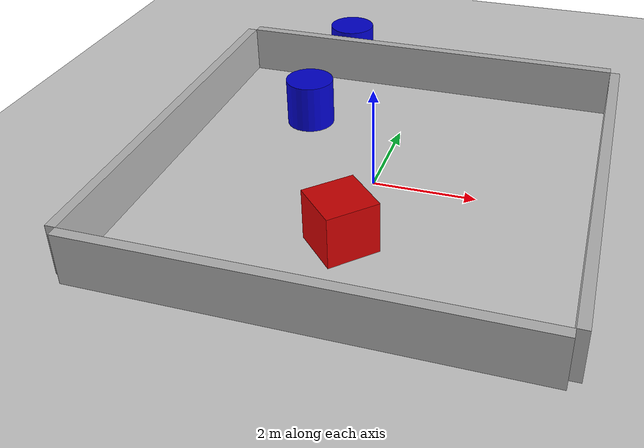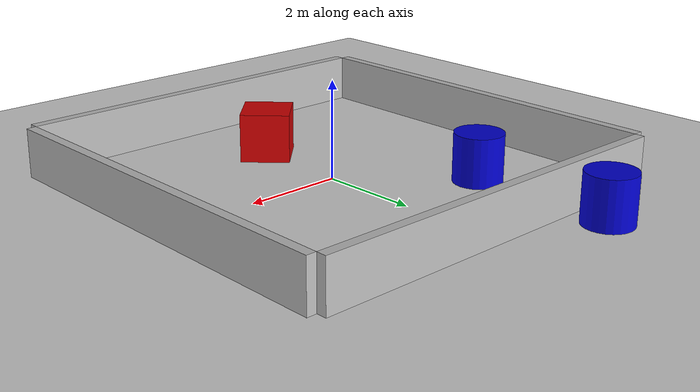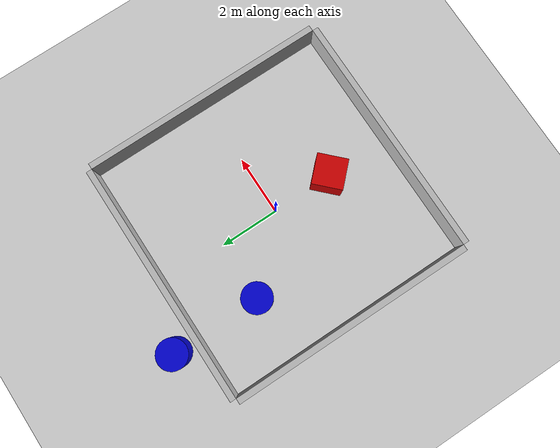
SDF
<sdf version="1.8">
 <world name="obstacle_world">
  <physics name="1ms" type="ignored">
   <max_step_size>0.001</max_step_size>
   <real_time_factor>1.0</real_time_factor>
  </physics>
  <plugin filename="gz-sim-physics-system" name="gz::sim::systems::Physics"/>
  <plugin filename="gz-sim-user-commands-system" name="gz::sim::systems::UserCommands"/>
  <plugin filename="gz-sim-scene-broadcaster-system" name="gz::sim::systems::SceneBroadcaster"/>
  <light type="directional" name="sun">
   <pose>0 0 10 0 0 0</pose>
   <diffuse>0.8 0.8 0.8 1</diffuse>
   <specular>0.2 0.2 0.2 1</specular>
   <attenuation>
    <range>1000</range>
    <constant>0.9</constant>
    <linear>0.01</linear>
    <quadratic>0.001</quadratic>
   </attenuation>
   <direction>-0.5 0.1 -0.9</direction>
  </light>
  <model name="ground_plane">
   <static>true</static>
   <link name="link">
    <collision name="collision">
     <geometry><plane><normal>0 0 1</normal><size>100 100</size></plane></geometry>
    </collision>
    <visual name="visual">
     <geometry><plane><normal>0 0 1</normal><size>100 100</size></plane></geometry>
     <material>
      <ambient>0.8 0.8 0.8 1</ambient>
      <diffuse>0.8 0.8 0.8 1</diffuse>
      <specular>0.8 0.8 0.8 1</specular>
     </material>
    </visual>
   </link>
  </model>
  <model name="wall_north">
   <static>true</static>
   <pose>0 4.2 0.5 0 0 0</pose>
   <link name="link">
    <collision name="collision"><geometry><box><size>8.2 0.2 1.0</size></box></geometry></collision>
    <visual name="visual"><geometry><box><size>8.2 0.2 1.0</size></box></geometry></visual>
   </link>
  </model>
  <model name="wall_south">
   <static>true</static>
   <pose>0 -4.2 0.5 0 0 0</pose>
   <link name="link">
    <collision name="collision"><geometry><box><size>8.2 0.2 1.0</size></box></geometry></collision>
    <visual name="visual"><geometry><box><size>8.2 0.2 1.0</size></box></geometry></visual>
   </link>
  </model>
  <model name="wall_west">
   <static>true</static>
   <pose>-4.2 0 0.5 0 0 0</pose>
   <link name="link">
    <collision name="collision"><geometry><box><size>0.2 8.2 1.0</size></box></geometry></collision>
    <visual name="visual"><geometry><box><size>0.2 8.2 1.0</size></box></geometry></visual>
   </link>
  </model>
  <model name="wall_east">
   <static>true</static>
   <pose>4.2 0 0.5 0 0 0</pose>
   <link name="link">
    <collision name="collision"><geometry><box><size>0.2 8.2 1.0</size></box></geometry></collision>
    <visual name="visual"><geometry><box><size>0.2 8.2 1.0</size></box></geometry></visual>
   </link>
  </model>
  <model name="cylinder_obstacle_1">
   <static>true</static>
   <pose>-2 2 0.5 0 0 0</pose>
   <link name="link">
    <collision name="collision">
     <geometry><cylinder><radius>0.5</radius><length>1.0</length></cylinder></geometry>
    </collision>
    <visual name="visual">
     <geometry><cylinder><radius>0.5</radius><length>1.0</length></cylinder></geometry>
     <material><ambient>0.0 0.0 0.8 1</ambient><diffuse>0.0 0.0 0.8 1</diffuse></material>
    </visual>
   </link>
  </model>
  <model name="cylinder_obstacle_2">
   <static>true</static>
   <pose>-2 5 0.5 0 0 0</pose>
   <link name="link">
    <collision name="collision">
     <geometry><cylinder><radius>0.5</radius><length>1.0</length></cylinder></geometry>
    </collision>
    <visual name="visual">
     <geometry><cylinder><radius>0.5</radius><length>1.0</length></cylinder></geometry>
     <material><ambient>0.0 0.0 0.8 1</ambient><diffuse>0.0 0.0 0.8 1</diffuse></material>
    </visual>
   </link>
  </model>
  <model name="box_obstacle">
   <static>true</static>
   <pose>0 -2 0.5 0 0 0.78</pose>
   <link name="link">
    <collision name="collision"><geometry><box><size>1.0 1.0 1.0</size></box></geometry></collision>
    <visual name="visual">
     <geometry><box><size>1.0 1.0 1.0</size></box></geometry>
     <material><ambient>0.8 0.0 0.0 1</ambient><diffuse>0.8 0.0 0.0 1</diffuse></material>
    </visual>
   </link>
  </model>
 </world>
</sdf>
